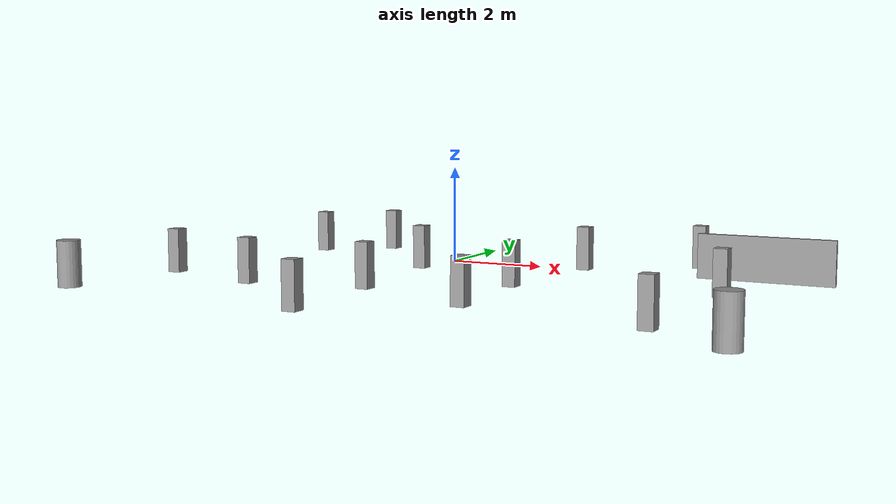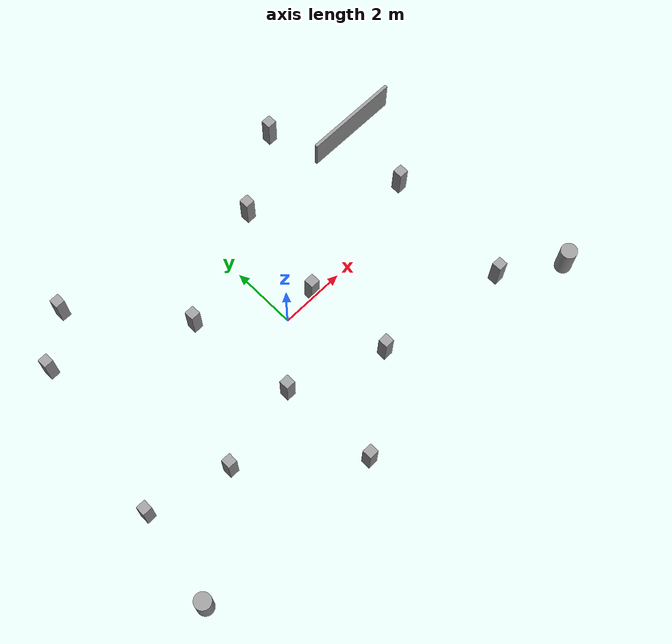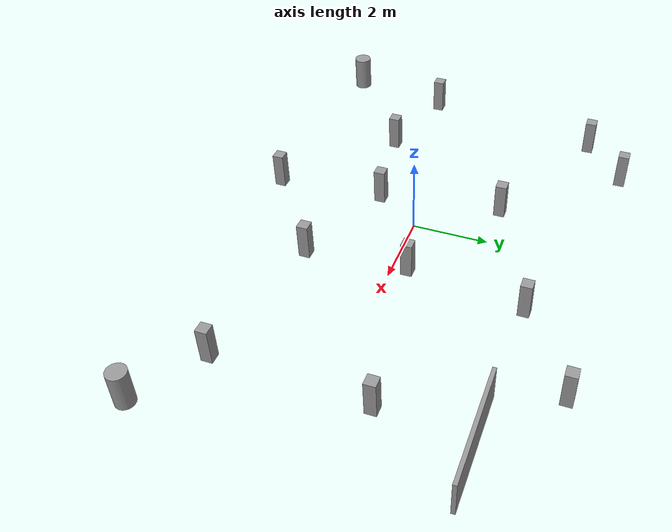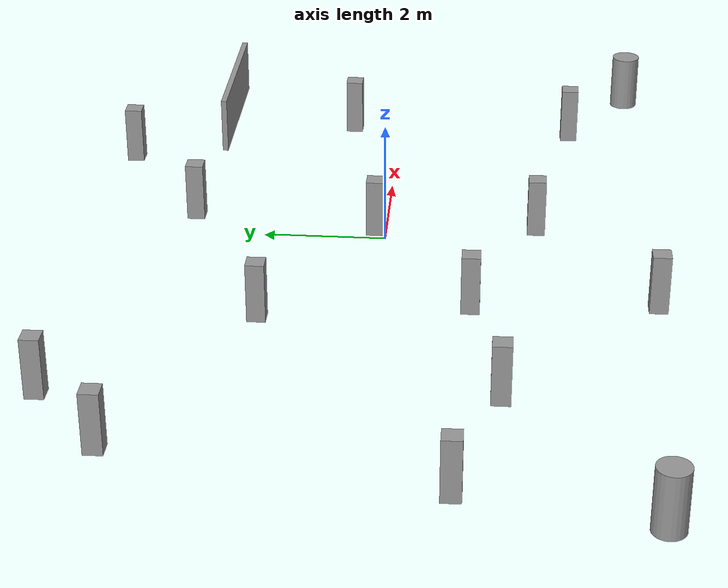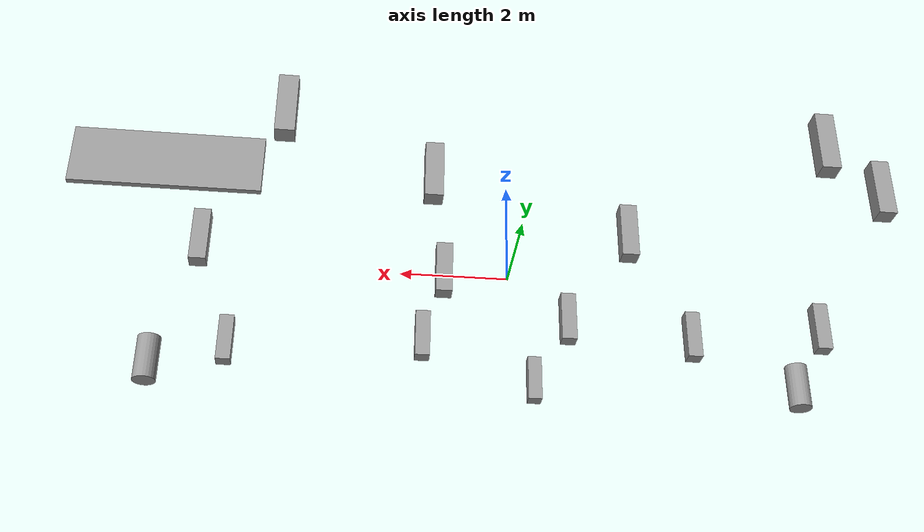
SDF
<?xml version='1.0'?>
<sdf version='1.7'>
  <model name='model_people'>
    <link name='link_1'>
      <inertial>
        <mass>1</mass>
        <inertia>
          <ixx>0.166667</ixx>
          <ixy>0</ixy>
          <ixz>0</ixz>
          <iyy>0.166667</iyy>
          <iyz>0</iyz>
          <izz>0.166667</izz>
        </inertia>
        <pose>0 0 0 0 -0 0</pose>
      </inertial>
      <pose>5.87565 3.29526 0 0 -0 0</pose>
      <gravity>1</gravity>
      <self_collide>0</self_collide>
      <kinematic>0</kinematic>
      <enable_wind>0</enable_wind>
      <visual name='visual'>
        <pose>0 0 0 0 -0 0</pose>
        <geometry>
          <box>
            <size>3 0.1 1</size>
          </box>
        </geometry>
        <material>
          <lighting>1</lighting>
          <script>
            <uri>file://media/materials/scripts/gazebo.material</uri>
            <name>Gazebo/Grey</name>
          </script>
          <shader type='pixel'>
            <normal_map>__default__</normal_map>
          </shader>
          <ambient>0.3 0.3 0.3 1</ambient>
          <diffuse>0.7 0.7 0.7 1</diffuse>
          <specular>0.01 0.01 0.01 1</specular>
          <emissive>0 0 0 1</emissive>
        </material>
        <transparency>0</transparency>
        <cast_shadows>1</cast_shadows>
      </visual>
      <collision name='collision'>
        <laser_retro>0</laser_retro>
        <max_contacts>10</max_contacts>
        <pose>0 0 0 0 -0 0</pose>
        <geometry>
          <box>
            <size>3 0.1 1</size>
          </box>
        </geometry>
        <surface>
          <friction>
            <ode>
              <mu>1</mu>
              <mu2>1</mu2>
              <fdir1>0 0 0</fdir1>
              <slip1>0</slip1>
              <slip2>0</slip2>
            </ode>
            <torsional>
              <coefficient>1</coefficient>
              <patch_radius>0</patch_radius>
              <surface_radius>0</surface_radius>
              <use_patch_radius>1</use_patch_radius>
              <ode>
                <slip>0</slip>
              </ode>
            </torsional>
          </friction>
          <bounce>
            <restitution_coefficient>0</restitution_coefficient>
            <threshold>1e+06</threshold>
          </bounce>
          <contact>
            <collide_without_contact>0</collide_without_contact>
            <collide_without_contact_bitmask>1</collide_without_contact_bitmask>
            <collide_bitmask>1</collide_bitmask>
            <ode>
              <soft_cfm>0</soft_cfm>
              <soft_erp>0.2</soft_erp>
              <kp>1e+13</kp>
              <kd>1</kd>
              <max_vel>0.01</max_vel>
              <min_depth>0</min_depth>
            </ode>
            <bullet>
              <split_impulse>1</split_impulse>
              <split_impulse_penetration_threshold>-0.01</split_impulse_penetration_threshold>
              <soft_cfm>0</soft_cfm>
              <soft_erp>0.2</soft_erp>
              <kp>1e+13</kp>
              <kd>1</kd>
            </bullet>
          </contact>
        </surface>
      </collision>
    </link>
    <link name='link_3'>
      <inertial>
        <mass>1</mass>
        <inertia>
          <ixx>0.166667</ixx>
          <ixy>0</ixy>
          <ixz>0</ixz>
          <iyy>0.166667</iyy>
          <iyz>0</iyz>
          <izz>0.166667</izz>
        </inertia>
        <pose>0 0 0 0 -0 0</pose>
      </inertial>
      <pose>1.41254 -2.50014 0 0 -0 0</pose>
      <gravity>1</gravity>
      <self_collide>0</self_collide>
      <kinematic>0</kinematic>
      <enable_wind>0</enable_wind>
      <visual name='visual'>
        <pose>0 0 0 0 -0 0</pose>
        <geometry>
          <box>
            <size>0.3 0.3 1</size>
          </box>
        </geometry>
        <material>
          <lighting>1</lighting>
          <script>
            <uri>file://media/materials/scripts/gazebo.material</uri>
            <name>Gazebo/Grey</name>
          </script>
          <shader type='pixel'>
            <normal_map>__default__</normal_map>
          </shader>
          <ambient>0.3 0.3 0.3 1</ambient>
          <diffuse>0.7 0.7 0.7 1</diffuse>
          <specular>0.01 0.01 0.01 1</specular>
          <emissive>0 0 0 1</emissive>
        </material>
        <transparency>0</transparency>
        <cast_shadows>1</cast_shadows>
      </visual>
      <collision name='collision'>
        <laser_retro>0</laser_retro>
        <max_contacts>10</max_contacts>
        <pose>0 0 0 0 -0 0</pose>
        <geometry>
          <box>
            <size>0.3 0.3 1</size>
          </box>
        </geometry>
        <surface>
          <friction>
            <ode>
              <mu>1</mu>
              <mu2>1</mu2>
              <fdir1>0 0 0</fdir1>
              <slip1>0</slip1>
              <slip2>0</slip2>
            </ode>
            <torsional>
              <coefficient>1</coefficient>
              <patch_radius>0</patch_radius>
              <surface_radius>0</surface_radius>
              <use_patch_radius>1</use_patch_radius>
              <ode>
                <slip>0</slip>
              </ode>
            </torsional>
          </friction>
          <bounce>
            <restitution_coefficient>0</restitution_coefficient>
            <threshold>1e+06</threshold>
          </bounce>
          <contact>
            <collide_without_contact>0</collide_without_contact>
            <collide_without_contact_bitmask>1</collide_without_contact_bitmask>
            <collide_bitmask>1</collide_bitmask>
            <ode>
              <soft_cfm>0</soft_cfm>
              <soft_erp>0.2</soft_erp>
              <kp>1e+13</kp>
              <kd>1</kd>
              <max_vel>0.01</max_vel>
              <min_depth>0</min_depth>
            </ode>
            <bullet>
              <split_impulse>1</split_impulse>
              <split_impulse_penetration_threshold>-0.01</split_impulse_penetration_threshold>
              <soft_cfm>0</soft_cfm>
              <soft_erp>0.2</soft_erp>
              <kp>1e+13</kp>
              <kd>1</kd>
            </bullet>
          </contact>
        </surface>
      </collision>
    </link>
    <link name='link_3_clone'>
      <inertial>
        <mass>1</mass>
        <inertia>
          <ixx>0.166667</ixx>
          <ixy>0</ixy>
          <ixz>0</ixz>
          <iyy>0.166667</iyy>
          <iyz>0</iyz>
          <izz>0.166667</izz>
        </inertia>
        <pose>0 0 0 0 -0 0</pose>
      </inertial>
      <pose>5.41108 -3.14206 0 0 -0 0</pose>
      <gravity>1</gravity>
      <self_collide>0</self_collide>
      <kinematic>0</kinematic>
      <enable_wind>0</enable_wind>
      <visual name='visual'>
        <pose>0 0 0 0 -0 0</pose>
        <geometry>
          <box>
            <size>0.3 0.3 1</size>
          </box>
        </geometry>
        <material>
          <lighting>1</lighting>
          <script>
            <uri>file://media/materials/scripts/gazebo.material</uri>
            <name>Gazebo/Grey</name>
          </script>
          <shader type='pixel'>
            <normal_map>__default__</normal_map>
          </shader>
          <ambient>0.3 0.3 0.3 1</ambient>
          <diffuse>0.7 0.7 0.7 1</diffuse>
          <specular>0.01 0.01 0.01 1</specular>
          <emissive>0 0 0 1</emissive>
        </material>
        <transparency>0</transparency>
        <cast_shadows>1</cast_shadows>
      </visual>
      <collision name='collision'>
        <laser_retro>0</laser_retro>
        <max_contacts>10</max_contacts>
        <pose>0 0 0 0 -0 0</pose>
        <geometry>
          <box>
            <size>0.3 0.3 1</size>
          </box>
        </geometry>
        <surface>
          <friction>
            <ode>
              <mu>1</mu>
              <mu2>1</mu2>
              <fdir1>0 0 0</fdir1>
              <slip1>0</slip1>
              <slip2>0</slip2>
            </ode>
            <torsional>
              <coefficient>1</coefficient>
              <patch_radius>0</patch_radius>
              <surface_radius>0</surface_radius>
              <use_patch_radius>1</use_patch_radius>
              <ode>
                <slip>0</slip>
              </ode>
            </torsional>
          </friction>
          <bounce>
            <restitution_coefficient>0</restitution_coefficient>
            <threshold>1e+06</threshold>
          </bounce>
          <contact>
            <collide_without_contact>0</collide_without_contact>
            <collide_without_contact_bitmask>1</collide_without_contact_bitmask>
            <collide_bitmask>1</collide_bitmask>
            <ode>
              <soft_cfm>0</soft_cfm>
              <soft_erp>0.2</soft_erp>
              <kp>1e+13</kp>
              <kd>1</kd>
              <max_vel>0.01</max_vel>
              <min_depth>0</min_depth>
            </ode>
            <bullet>
              <split_impulse>1</split_impulse>
              <split_impulse_penetration_threshold>-0.01</split_impulse_penetration_threshold>
              <soft_cfm>0</soft_cfm>
              <soft_erp>0.2</soft_erp>
              <kp>1e+13</kp>
              <kd>1</kd>
            </bullet>
          </contact>
        </surface>
      </collision>
    </link>
    <link name='link_3_clone_0'>
      <inertial>
        <mass>1</mass>
        <inertia>
          <ixx>0.166667</ixx>
          <ixy>0</ixy>
          <ixz>0</ixz>
          <iyy>0.166667</iyy>
          <iyz>0</iyz>
          <izz>0.166667</izz>
        </inertia>
        <pose>0 0 0 0 -0 0</pose>
      </inertial>
      <pose>1.64513 3.40116 0 0 -0 0</pose>
      <gravity>1</gravity>
      <self_collide>0</self_collide>
      <kinematic>0</kinematic>
      <enable_wind>0</enable_wind>
      <visual name='visual'>
        <pose>0 0 0 0 -0 0</pose>
        <geometry>
          <box>
            <size>0.3 0.3 1</size>
          </box>
        </geometry>
        <material>
          <lighting>1</lighting>
          <script>
            <uri>file://media/materials/scripts/gazebo.material</uri>
            <name>Gazebo/Grey</name>
          </script>
          <shader type='pixel'>
            <normal_map>__default__</normal_map>
          </shader>
          <ambient>0.3 0.3 0.3 1</ambient>
          <diffuse>0.7 0.7 0.7 1</diffuse>
          <specular>0.01 0.01 0.01 1</specular>
          <emissive>0 0 0 1</emissive>
        </material>
        <transparency>0</transparency>
        <cast_shadows>1</cast_shadows>
      </visual>
      <collision name='collision'>
        <laser_retro>0</laser_retro>
        <max_contacts>10</max_contacts>
        <pose>0 0 0 0 -0 0</pose>
        <geometry>
          <box>
            <size>0.3 0.3 1</size>
          </box>
        </geometry>
        <surface>
          <friction>
            <ode>
              <mu>1</mu>
              <mu2>1</mu2>
              <fdir1>0 0 0</fdir1>
              <slip1>0</slip1>
              <slip2>0</slip2>
            </ode>
            <torsional>
              <coefficient>1</coefficient>
              <patch_radius>0</patch_radius>
              <surface_radius>0</surface_radius>
              <use_patch_radius>1</use_patch_radius>
              <ode>
                <slip>0</slip>
              </ode>
            </torsional>
          </friction>
          <bounce>
            <restitution_coefficient>0</restitution_coefficient>
            <threshold>1e+06</threshold>
          </bounce>
          <contact>
            <collide_without_contact>0</collide_without_contact>
            <collide_without_contact_bitmask>1</collide_without_contact_bitmask>
            <collide_bitmask>1</collide_bitmask>
            <ode>
              <soft_cfm>0</soft_cfm>
              <soft_erp>0.2</soft_erp>
              <kp>1e+13</kp>
              <kd>1</kd>
              <max_vel>0.01</max_vel>
              <min_depth>0</min_depth>
            </ode>
            <bullet>
              <split_impulse>1</split_impulse>
              <split_impulse_penetration_threshold>-0.01</split_impulse_penetration_threshold>
              <soft_cfm>0</soft_cfm>
              <soft_erp>0.2</soft_erp>
              <kp>1e+13</kp>
              <kd>1</kd>
            </bullet>
          </contact>
        </surface>
      </collision>
    </link>
    <link name='link_3_clone_1'>
      <inertial>
        <mass>1</mass>
        <inertia>
          <ixx>0.166667</ixx>
          <ixy>0</ixy>
          <ixz>0</ixz>
          <iyy>0.166667</iyy>
          <iyz>0</iyz>
          <izz>0.166667</izz>
        </inertia>
        <pose>0 0 0 0 -0 0</pose>
      </inertial>
      <pose>-1.40268 -1.44307 0 0 -0 0</pose>
      <gravity>1</gravity>
      <self_collide>0</self_collide>
      <kinematic>0</kinematic>
      <enable_wind>0</enable_wind>
      <visual name='visual'>
        <pose>0 0 0 0 -0 0</pose>
        <geometry>
          <box>
            <size>0.3 0.3 1</size>
          </box>
        </geometry>
        <material>
          <lighting>1</lighting>
          <script>
            <uri>file://media/materials/scripts/gazebo.material</uri>
            <name>Gazebo/Grey</name>
          </script>
          <shader type='pixel'>
            <normal_map>__default__</normal_map>
          </shader>
          <ambient>0.3 0.3 0.3 1</ambient>
          <diffuse>0.7 0.7 0.7 1</diffuse>
          <specular>0.01 0.01 0.01 1</specular>
          <emissive>0 0 0 1</emissive>
        </material>
        <transparency>0</transparency>
        <cast_shadows>1</cast_shadows>
      </visual>
      <collision name='collision'>
        <laser_retro>0</laser_retro>
        <max_contacts>10</max_contacts>
        <pose>0 0 0 0 -0 0</pose>
        <geometry>
          <box>
            <size>0.3 0.3 1</size>
          </box>
        </geometry>
        <surface>
          <friction>
            <ode>
              <mu>1</mu>
              <mu2>1</mu2>
              <fdir1>0 0 0</fdir1>
              <slip1>0</slip1>
              <slip2>0</slip2>
            </ode>
            <torsional>
              <coefficient>1</coefficient>
              <patch_radius>0</patch_radius>
              <surface_radius>0</surface_radius>
              <use_patch_radius>1</use_patch_radius>
              <ode>
                <slip>0</slip>
              </ode>
            </torsional>
          </friction>
          <bounce>
            <restitution_coefficient>0</restitution_coefficient>
            <threshold>1e+06</threshold>
          </bounce>
          <contact>
            <collide_without_contact>0</collide_without_contact>
            <collide_without_contact_bitmask>1</collide_without_contact_bitmask>
            <collide_bitmask>1</collide_bitmask>
            <ode>
              <soft_cfm>0</soft_cfm>
              <soft_erp>0.2</soft_erp>
              <kp>1e+13</kp>
              <kd>1</kd>
              <max_vel>0.01</max_vel>
              <min_depth>0</min_depth>
            </ode>
            <bullet>
              <split_impulse>1</split_impulse>
              <split_impulse_penetration_threshold>-0.01</split_impulse_penetration_threshold>
              <soft_cfm>0</soft_cfm>
              <soft_erp>0.2</soft_erp>
              <kp>1e+13</kp>
              <kd>1</kd>
            </bullet>
          </contact>
        </surface>
      </collision>
    </link>
    <link name='link_3_clone_2'>
      <inertial>
        <mass>1</mass>
        <inertia>
          <ixx>0.166667</ixx>
          <ixy>0</ixy>
          <ixz>0</ixz>
          <iyy>0.166667</iyy>
          <iyz>0</iyz>
          <izz>0.166667</izz>
        </inertia>
        <pose>0 0 0 0 -0 0</pose>
      </inertial>
      <pose>-1.8757 1.90285 0 0 -0 0</pose>
      <gravity>1</gravity>
      <self_collide>0</self_collide>
      <kinematic>0</kinematic>
      <enable_wind>0</enable_wind>
      <visual name='visual'>
        <pose>0 0 0 0 -0 0</pose>
        <geometry>
          <box>
            <size>0.3 0.3 1</size>
          </box>
        </geometry>
        <material>
          <lighting>1</lighting>
          <script>
            <uri>file://media/materials/scripts/gazebo.material</uri>
            <name>Gazebo/Grey</name>
          </script>
          <shader type='pixel'>
            <normal_map>__default__</normal_map>
          </shader>
          <ambient>0.3 0.3 0.3 1</ambient>
          <diffuse>0.7 0.7 0.7 1</diffuse>
          <specular>0.01 0.01 0.01 1</specular>
          <emissive>0 0 0 1</emissive>
        </material>
        <transparency>0</transparency>
        <cast_shadows>1</cast_shadows>
      </visual>
      <collision name='collision'>
        <laser_retro>0</laser_retro>
        <max_contacts>10</max_contacts>
        <pose>0 0 0 0 -0 0</pose>
        <geometry>
          <box>
            <size>0.3 0.3 1</size>
          </box>
        </geometry>
        <surface>
          <friction>
            <ode>
              <mu>1</mu>
              <mu2>1</mu2>
              <fdir1>0 0 0</fdir1>
              <slip1>0</slip1>
              <slip2>0</slip2>
            </ode>
            <torsional>
              <coefficient>1</coefficient>
              <patch_radius>0</patch_radius>
              <surface_radius>0</surface_radius>
              <use_patch_radius>1</use_patch_radius>
              <ode>
                <slip>0</slip>
              </ode>
            </torsional>
          </friction>
          <bounce>
            <restitution_coefficient>0</restitution_coefficient>
            <threshold>1e+06</threshold>
          </bounce>
          <contact>
            <collide_without_contact>0</collide_without_contact>
            <collide_without_contact_bitmask>1</collide_without_contact_bitmask>
            <collide_bitmask>1</collide_bitmask>
            <ode>
              <soft_cfm>0</soft_cfm>
              <soft_erp>0.2</soft_erp>
              <kp>1e+13</kp>
              <kd>1</kd>
              <max_vel>0.01</max_vel>
              <min_depth>0</min_depth>
            </ode>
            <bullet>
              <split_impulse>1</split_impulse>
              <split_impulse_penetration_threshold>-0.01</split_impulse_penetration_threshold>
              <soft_cfm>0</soft_cfm>
              <soft_erp>0.2</soft_erp>
              <kp>1e+13</kp>
              <kd>1</kd>
            </bullet>
          </contact>
        </surface>
      </collision>
    </link>
    <link name='link_3_clone_2_clone'>
      <inertial>
        <mass>1</mass>
        <inertia>
          <ixx>0.166667</ixx>
          <ixy>0</ixy>
          <ixz>0</ixz>
          <iyy>0.166667</iyy>
          <iyz>0</iyz>
          <izz>0.166667</izz>
        </inertia>
        <pose>0 0 0 0 -0 0</pose>
      </inertial>
      <pose>-4.3502 4.85297 0 0 -0 0</pose>
      <gravity>1</gravity>
      <self_collide>0</self_collide>
      <kinematic>0</kinematic>
      <enable_wind>0</enable_wind>
      <visual name='visual'>
        <pose>0 0 0 0 -0 0</pose>
        <geometry>
          <box>
            <size>0.3 0.3 1</size>
          </box>
        </geometry>
        <material>
          <lighting>1</lighting>
          <script>
            <uri>file://media/materials/scripts/gazebo.material</uri>
            <name>Gazebo/Grey</name>
          </script>
          <shader type='pixel'>
            <normal_map>__default__</normal_map>
          </shader>
          <ambient>0.3 0.3 0.3 1</ambient>
          <diffuse>0.7 0.7 0.7 1</diffuse>
          <specular>0.01 0.01 0.01 1</specular>
          <emissive>0 0 0 1</emissive>
        </material>
        <transparency>0</transparency>
        <cast_shadows>1</cast_shadows>
      </visual>
      <collision name='collision'>
        <laser_retro>0</laser_retro>
        <max_contacts>10</max_contacts>
        <pose>0 0 0 0 -0 0</pose>
        <geometry>
          <box>
            <size>0.3 0.3 1</size>
          </box>
        </geometry>
        <surface>
          <friction>
            <ode>
              <mu>1</mu>
              <mu2>1</mu2>
              <fdir1>0 0 0</fdir1>
              <slip1>0</slip1>
              <slip2>0</slip2>
            </ode>
            <torsional>
              <coefficient>1</coefficient>
              <patch_radius>0</patch_radius>
              <surface_radius>0</surface_radius>
              <use_patch_radius>1</use_patch_radius>
              <ode>
                <slip>0</slip>
              </ode>
            </torsional>
          </friction>
          <bounce>
            <restitution_coefficient>0</restitution_coefficient>
            <threshold>1e+06</threshold>
          </bounce>
          <contact>
            <collide_without_contact>0</collide_without_contact>
            <collide_without_contact_bitmask>1</collide_without_contact_bitmask>
            <collide_bitmask>1</collide_bitmask>
            <ode>
              <soft_cfm>0</soft_cfm>
              <soft_erp>0.2</soft_erp>
              <kp>1e+13</kp>
              <kd>1</kd>
              <max_vel>0.01</max_vel>
              <min_depth>0</min_depth>
            </ode>
            <bullet>
              <split_impulse>1</split_impulse>
              <split_impulse_penetration_threshold>-0.01</split_impulse_penetration_threshold>
              <soft_cfm>0</soft_cfm>
              <soft_erp>0.2</soft_erp>
              <kp>1e+13</kp>
              <kd>1</kd>
            </bullet>
          </contact>
        </surface>
      </collision>
    </link>
    <link name='link_3_clone_2_clone_0'>
      <inertial>
        <mass>1</mass>
        <inertia>
          <ixx>0.166667</ixx>
          <ixy>0</ixy>
          <ixz>0</ixz>
          <iyy>0.166667</iyy>
          <iyz>0</iyz>
          <izz>0.166667</izz>
        </inertia>
        <pose>0 0 0 0 -0 0</pose>
      </inertial>
      <pose>-4.06604 -1.95479 0 0 -0 0</pose>
      <gravity>1</gravity>
      <self_collide>0</self_collide>
      <kinematic>0</kinematic>
      <enable_wind>0</enable_wind>
      <visual name='visual'>
        <pose>0 0 0 0 -0 0</pose>
        <geometry>
          <box>
            <size>0.3 0.3 1</size>
          </box>
        </geometry>
        <material>
          <lighting>1</lighting>
          <script>
            <uri>file://media/materials/scripts/gazebo.material</uri>
            <name>Gazebo/Grey</name>
          </script>
          <shader type='pixel'>
            <normal_map>__default__</normal_map>
          </shader>
          <ambient>0.3 0.3 0.3 1</ambient>
          <diffuse>0.7 0.7 0.7 1</diffuse>
          <specular>0.01 0.01 0.01 1</specular>
          <emissive>0 0 0 1</emissive>
        </material>
        <transparency>0</transparency>
        <cast_shadows>1</cast_shadows>
      </visual>
      <collision name='collision'>
        <laser_retro>0</laser_retro>
        <max_contacts>10</max_contacts>
        <pose>0 0 0 0 -0 0</pose>
        <geometry>
          <box>
            <size>0.3 0.3 1</size>
          </box>
        </geometry>
        <surface>
          <friction>
            <ode>
              <mu>1</mu>
              <mu2>1</mu2>
              <fdir1>0 0 0</fdir1>
              <slip1>0</slip1>
              <slip2>0</slip2>
            </ode>
            <torsional>
              <coefficient>1</coefficient>
              <patch_radius>0</patch_radius>
              <surface_radius>0</surface_radius>
              <use_patch_radius>1</use_patch_radius>
              <ode>
                <slip>0</slip>
              </ode>
            </torsional>
          </friction>
          <bounce>
            <restitution_coefficient>0</restitution_coefficient>
            <threshold>1e+06</threshold>
          </bounce>
          <contact>
            <collide_without_contact>0</collide_without_contact>
            <collide_without_contact_bitmask>1</collide_without_contact_bitmask>
            <collide_bitmask>1</collide_bitmask>
            <ode>
              <soft_cfm>0</soft_cfm>
              <soft_erp>0.2</soft_erp>
              <kp>1e+13</kp>
              <kd>1</kd>
              <max_vel>0.01</max_vel>
              <min_depth>0</min_depth>
            </ode>
            <bullet>
              <split_impulse>1</split_impulse>
              <split_impulse_penetration_threshold>-0.01</split_impulse_penetration_threshold>
              <soft_cfm>0</soft_cfm>
              <soft_erp>0.2</soft_erp>
              <kp>1e+13</kp>
              <kd>1</kd>
            </bullet>
          </contact>
        </surface>
      </collision>
    </link>
    <link name='link_3_clone_2_clone_1'>
      <inertial>
        <mass>1</mass>
        <inertia>
          <ixx>0.166667</ixx>
          <ixy>0</ixy>
          <ixz>0</ixz>
          <iyy>0.166667</iyy>
          <iyz>0</iyz>
          <izz>0.166667</izz>
        </inertia>
        <pose>0 0 0 0 -0 0</pose>
      </inertial>
      <pose>-5.73259 3.6978 0 0 -0 0</pose>
      <gravity>1</gravity>
      <self_collide>0</self_collide>
      <kinematic>0</kinematic>
      <enable_wind>0</enable_wind>
      <visual name='visual'>
        <pose>0 0 0 0 -0 0</pose>
        <geometry>
          <box>
            <size>0.3 0.3 1</size>
          </box>
        </geometry>
        <material>
          <lighting>1</lighting>
          <script>
            <uri>file://media/materials/scripts/gazebo.material</uri>
            <name>Gazebo/Grey</name>
          </script>
          <shader type='pixel'>
            <normal_map>__default__</normal_map>
          </shader>
          <ambient>0.3 0.3 0.3 1</ambient>
          <diffuse>0.7 0.7 0.7 1</diffuse>
          <specular>0.01 0.01 0.01 1</specular>
          <emissive>0 0 0 1</emissive>
        </material>
        <transparency>0</transparency>
        <cast_shadows>1</cast_shadows>
      </visual>
      <collision name='collision'>
        <laser_retro>0</laser_retro>
        <max_contacts>10</max_contacts>
        <pose>0 0 0 0 -0 0</pose>
        <geometry>
          <box>
            <size>0.3 0.3 1</size>
          </box>
        </geometry>
        <surface>
          <friction>
            <ode>
              <mu>1</mu>
              <mu2>1</mu2>
              <fdir1>0 0 0</fdir1>
              <slip1>0</slip1>
              <slip2>0</slip2>
            </ode>
            <torsional>
              <coefficient>1</coefficient>
              <patch_radius>0</patch_radius>
              <surface_radius>0</surface_radius>
              <use_patch_radius>1</use_patch_radius>
              <ode>
                <slip>0</slip>
              </ode>
            </torsional>
          </friction>
          <bounce>
            <restitution_coefficient>0</restitution_coefficient>
            <threshold>1e+06</threshold>
          </bounce>
          <contact>
            <collide_without_contact>0</collide_without_contact>
            <collide_without_contact_bitmask>1</collide_without_contact_bitmask>
            <collide_bitmask>1</collide_bitmask>
            <ode>
              <soft_cfm>0</soft_cfm>
              <soft_erp>0.2</soft_erp>
              <kp>1e+13</kp>
              <kd>1</kd>
              <max_vel>0.01</max_vel>
              <min_depth>0</min_depth>
            </ode>
            <bullet>
              <split_impulse>1</split_impulse>
              <split_impulse_penetration_threshold>-0.01</split_impulse_penetration_threshold>
              <soft_cfm>0</soft_cfm>
              <soft_erp>0.2</soft_erp>
              <kp>1e+13</kp>
              <kd>1</kd>
            </bullet>
          </contact>
        </surface>
      </collision>
    </link>
    <link name='link_3_clone_2_clone_2'>
      <inertial>
        <mass>1</mass>
        <inertia>
          <ixx>0.166667</ixx>
          <ixy>0</ixy>
          <ixz>0</ixz>
          <iyy>0.166667</iyy>
          <iyz>0</iyz>
          <izz>0.166667</izz>
        </inertia>
        <pose>0 0 0 0 -0 0</pose>
      </inertial>
      <pose>-6.53007 -1.31119 0 0 -0 0</pose>
      <gravity>1</gravity>
      <self_collide>0</self_collide>
      <kinematic>0</kinematic>
      <enable_wind>0</enable_wind>
      <visual name='visual'>
        <pose>0 0 0 0 -0 0</pose>
        <geometry>
          <box>
            <size>0.3 0.3 1</size>
          </box>
        </geometry>
        <material>
          <lighting>1</lighting>
          <script>
            <uri>file://media/materials/scripts/gazebo.material</uri>
            <name>Gazebo/Grey</name>
          </script>
          <shader type='pixel'>
            <normal_map>__default__</normal_map>
          </shader>
          <ambient>0.3 0.3 0.3 1</ambient>
          <diffuse>0.7 0.7 0.7 1</diffuse>
          <specular>0.01 0.01 0.01 1</specular>
          <emissive>0 0 0 1</emissive>
        </material>
        <transparency>0</transparency>
        <cast_shadows>1</cast_shadows>
      </visual>
      <collision name='collision'>
        <laser_retro>0</laser_retro>
        <max_contacts>10</max_contacts>
        <pose>0 0 0 0 -0 0</pose>
        <geometry>
          <box>
            <size>0.3 0.3 1</size>
          </box>
        </geometry>
        <surface>
          <friction>
            <ode>
              <mu>1</mu>
              <mu2>1</mu2>
              <fdir1>0 0 0</fdir1>
              <slip1>0</slip1>
              <slip2>0</slip2>
            </ode>
            <torsional>
              <coefficient>1</coefficient>
              <patch_radius>0</patch_radius>
              <surface_radius>0</surface_radius>
              <use_patch_radius>1</use_patch_radius>
              <ode>
                <slip>0</slip>
              </ode>
            </torsional>
          </friction>
          <bounce>
            <restitution_coefficient>0</restitution_coefficient>
            <threshold>1e+06</threshold>
          </bounce>
          <contact>
            <collide_without_contact>0</collide_without_contact>
            <collide_without_contact_bitmask>1</collide_without_contact_bitmask>
            <collide_bitmask>1</collide_bitmask>
            <ode>
              <soft_cfm>0</soft_cfm>
              <soft_erp>0.2</soft_erp>
              <kp>1e+13</kp>
              <kd>1</kd>
              <max_vel>0.01</max_vel>
              <min_depth>0</min_depth>
            </ode>
            <bullet>
              <split_impulse>1</split_impulse>
              <split_impulse_penetration_threshold>-0.01</split_impulse_penetration_threshold>
              <soft_cfm>0</soft_cfm>
              <soft_erp>0.2</soft_erp>
              <kp>1e+13</kp>
              <kd>1</kd>
            </bullet>
          </contact>
        </surface>
      </collision>
    </link>
    <link name='link_3_clone_2_clone_3'>
      <inertial>
        <mass>1</mass>
        <inertia>
          <ixx>0.166667</ixx>
          <ixy>0</ixy>
          <ixz>0</ixz>
          <iyy>0.166667</iyy>
          <iyz>0</iyz>
          <izz>0.166667</izz>
        </inertia>
        <pose>0 0 0 0 -0 0</pose>
      </inertial>
      <pose>-1.18011 -4.42479 0 0 -0 0</pose>
      <gravity>1</gravity>
      <self_collide>0</self_collide>
      <kinematic>0</kinematic>
      <enable_wind>0</enable_wind>
      <visual name='visual'>
        <pose>0 0 0 0 -0 0</pose>
        <geometry>
          <box>
            <size>0.3 0.3 1</size>
          </box>
        </geometry>
        <material>
          <lighting>1</lighting>
          <script>
            <uri>file://media/materials/scripts/gazebo.material</uri>
            <name>Gazebo/Grey</name>
          </script>
          <shader type='pixel'>
            <normal_map>__default__</normal_map>
          </shader>
          <ambient>0.3 0.3 0.3 1</ambient>
          <diffuse>0.7 0.7 0.7 1</diffuse>
          <specular>0.01 0.01 0.01 1</specular>
          <emissive>0 0 0 1</emissive>
        </material>
        <transparency>0</transparency>
        <cast_shadows>1</cast_shadows>
      </visual>
      <collision name='collision'>
        <laser_retro>0</laser_retro>
        <max_contacts>10</max_contacts>
        <pose>0 0 0 0 -0 0</pose>
        <geometry>
          <box>
            <size>0.3 0.3 1</size>
          </box>
        </geometry>
        <surface>
          <friction>
            <ode>
              <mu>1</mu>
              <mu2>1</mu2>
              <fdir1>0 0 0</fdir1>
              <slip1>0</slip1>
              <slip2>0</slip2>
            </ode>
            <torsional>
              <coefficient>1</coefficient>
              <patch_radius>0</patch_radius>
              <surface_radius>0</surface_radius>
              <use_patch_radius>1</use_patch_radius>
              <ode>
                <slip>0</slip>
              </ode>
            </torsional>
          </friction>
          <bounce>
            <restitution_coefficient>0</restitution_coefficient>
            <threshold>1e+06</threshold>
          </bounce>
          <contact>
            <collide_without_contact>0</collide_without_contact>
            <collide_without_contact_bitmask>1</collide_without_contact_bitmask>
            <collide_bitmask>1</collide_bitmask>
            <ode>
              <soft_cfm>0</soft_cfm>
              <soft_erp>0.2</soft_erp>
              <kp>1e+13</kp>
              <kd>1</kd>
              <max_vel>0.01</max_vel>
              <min_depth>0</min_depth>
            </ode>
            <bullet>
              <split_impulse>1</split_impulse>
              <split_impulse_penetration_threshold>-0.01</split_impulse_penetration_threshold>
              <soft_cfm>0</soft_cfm>
              <soft_erp>0.2</soft_erp>
              <kp>1e+13</kp>
              <kd>1</kd>
            </bullet>
          </contact>
        </surface>
      </collision>
    </link>
    <link name='link_3_clone_3'>
      <inertial>
        <mass>1</mass>
        <inertia>
          <ixx>0.166667</ixx>
          <ixy>0</ixy>
          <ixz>0</ixz>
          <iyy>0.166667</iyy>
          <iyz>0</iyz>
          <izz>0.166667</izz>
        </inertia>
        <pose>0 0 0 0 -0 0</pose>
      </inertial>
      <pose>1.21145 0.247128 0 0 -0 0</pose>
      <gravity>1</gravity>
      <self_collide>0</self_collide>
      <kinematic>0</kinematic>
      <enable_wind>0</enable_wind>
      <visual name='visual'>
        <pose>0 0 0 0 -0 0</pose>
        <geometry>
          <box>
            <size>0.3 0.3 1</size>
          </box>
        </geometry>
        <material>
          <lighting>1</lighting>
          <script>
            <uri>file://media/materials/scripts/gazebo.material</uri>
            <name>Gazebo/Grey</name>
          </script>
          <shader type='pixel'>
            <normal_map>__default__</normal_map>
          </shader>
          <ambient>0.3 0.3 0.3 1</ambient>
          <diffuse>0.7 0.7 0.7 1</diffuse>
          <specular>0.01 0.01 0.01 1</specular>
          <emissive>0 0 0 1</emissive>
        </material>
        <transparency>0</transparency>
        <cast_shadows>1</cast_shadows>
      </visual>
      <collision name='collision'>
        <laser_retro>0</laser_retro>
        <max_contacts>10</max_contacts>
        <pose>0 0 0 0 -0 0</pose>
        <geometry>
          <box>
            <size>0.3 0.3 1</size>
          </box>
        </geometry>
        <surface>
          <friction>
            <ode>
              <mu>1</mu>
              <mu2>1</mu2>
              <fdir1>0 0 0</fdir1>
              <slip1>0</slip1>
              <slip2>0</slip2>
            </ode>
            <torsional>
              <coefficient>1</coefficient>
              <patch_radius>0</patch_radius>
              <surface_radius>0</surface_radius>
              <use_patch_radius>1</use_patch_radius>
              <ode>
                <slip>0</slip>
              </ode>
            </torsional>
          </friction>
          <bounce>
            <restitution_coefficient>0</restitution_coefficient>
            <threshold>1e+06</threshold>
          </bounce>
          <contact>
            <collide_without_contact>0</collide_without_contact>
            <collide_without_contact_bitmask>1</collide_without_contact_bitmask>
            <collide_bitmask>1</collide_bitmask>
            <ode>
              <soft_cfm>0</soft_cfm>
              <soft_erp>0.2</soft_erp>
              <kp>1e+13</kp>
              <kd>1</kd>
              <max_vel>0.01</max_vel>
              <min_depth>0</min_depth>
            </ode>
            <bullet>
              <split_impulse>1</split_impulse>
              <split_impulse_penetration_threshold>-0.01</split_impulse_penetration_threshold>
              <soft_cfm>0</soft_cfm>
              <soft_erp>0.2</soft_erp>
              <kp>1e+13</kp>
              <kd>1</kd>
            </bullet>
          </contact>
        </surface>
      </collision>
    </link>
    <link name='link_3_clone_4'>
      <inertial>
        <mass>1</mass>
        <inertia>
          <ixx>0.166667</ixx>
          <ixy>0</ixy>
          <ixz>0</ixz>
          <iyy>0.166667</iyy>
          <iyz>0</iyz>
          <izz>0.166667</izz>
        </inertia>
        <pose>0 0 0 0 -0 0</pose>
      </inertial>
      <pose>5.56661 0.940043 0 0 -0 0</pose>
      <gravity>1</gravity>
      <self_collide>0</self_collide>
      <kinematic>0</kinematic>
      <enable_wind>0</enable_wind>
      <visual name='visual'>
        <pose>0 0 0 0 -0 0</pose>
        <geometry>
          <box>
            <size>0.3 0.3 1</size>
          </box>
        </geometry>
        <material>
          <lighting>1</lighting>
          <script>
            <uri>file://media/materials/scripts/gazebo.material</uri>
            <name>Gazebo/Grey</name>
          </script>
          <shader type='pixel'>
            <normal_map>__default__</normal_map>
          </shader>
          <ambient>0.3 0.3 0.3 1</ambient>
          <diffuse>0.7 0.7 0.7 1</diffuse>
          <specular>0.01 0.01 0.01 1</specular>
          <emissive>0 0 0 1</emissive>
        </material>
        <transparency>0</transparency>
        <cast_shadows>1</cast_shadows>
      </visual>
      <collision name='collision'>
        <laser_retro>0</laser_retro>
        <max_contacts>10</max_contacts>
        <pose>0 0 0 0 -0 0</pose>
        <geometry>
          <box>
            <size>0.3 0.3 1</size>
          </box>
        </geometry>
        <surface>
          <friction>
            <ode>
              <mu>1</mu>
              <mu2>1</mu2>
              <fdir1>0 0 0</fdir1>
              <slip1>0</slip1>
              <slip2>0</slip2>
            </ode>
            <torsional>
              <coefficient>1</coefficient>
              <patch_radius>0</patch_radius>
              <surface_radius>0</surface_radius>
              <use_patch_radius>1</use_patch_radius>
              <ode>
                <slip>0</slip>
              </ode>
            </torsional>
          </friction>
          <bounce>
            <restitution_coefficient>0</restitution_coefficient>
            <threshold>1e+06</threshold>
          </bounce>
          <contact>
            <collide_without_contact>0</collide_without_contact>
            <collide_without_contact_bitmask>1</collide_without_contact_bitmask>
            <collide_bitmask>1</collide_bitmask>
            <ode>
              <soft_cfm>0</soft_cfm>
              <soft_erp>0.2</soft_erp>
              <kp>1e+13</kp>
              <kd>1</kd>
              <max_vel>0.01</max_vel>
              <min_depth>0</min_depth>
            </ode>
            <bullet>
              <split_impulse>1</split_impulse>
              <split_impulse_penetration_threshold>-0.01</split_impulse_penetration_threshold>
              <soft_cfm>0</soft_cfm>
              <soft_erp>0.2</soft_erp>
              <kp>1e+13</kp>
              <kd>1</kd>
            </bullet>
          </contact>
        </surface>
      </collision>
    </link>
    <link name='link_3_clone_5'>
      <inertial>
        <mass>1</mass>
        <inertia>
          <ixx>0.166667</ixx>
          <ixy>0</ixy>
          <ixz>0</ixz>
          <iyy>0.166667</iyy>
          <iyz>0</iyz>
          <izz>0.166667</izz>
        </inertia>
        <pose>0 0 0 0 -0 0</pose>
      </inertial>
      <pose>3.96151 4.89158 0 0 -0 0</pose>
      <gravity>1</gravity>
      <self_collide>0</self_collide>
      <kinematic>0</kinematic>
      <enable_wind>0</enable_wind>
      <visual name='visual'>
        <pose>0 0 0 0 -0 0</pose>
        <geometry>
          <box>
            <size>0.3 0.3 1</size>
          </box>
        </geometry>
        <material>
          <lighting>1</lighting>
          <script>
            <uri>file://media/materials/scripts/gazebo.material</uri>
            <name>Gazebo/Grey</name>
          </script>
          <shader type='pixel'>
            <normal_map>__default__</normal_map>
          </shader>
          <ambient>0.3 0.3 0.3 1</ambient>
          <diffuse>0.7 0.7 0.7 1</diffuse>
          <specular>0.01 0.01 0.01 1</specular>
          <emissive>0 0 0 1</emissive>
        </material>
        <transparency>0</transparency>
        <cast_shadows>1</cast_shadows>
      </visual>
      <collision name='collision'>
        <laser_retro>0</laser_retro>
        <max_contacts>10</max_contacts>
        <pose>0 0 0 0 -0 0</pose>
        <geometry>
          <box>
            <size>0.3 0.3 1</size>
          </box>
        </geometry>
        <surface>
          <friction>
            <ode>
              <mu>1</mu>
              <mu2>1</mu2>
              <fdir1>0 0 0</fdir1>
              <slip1>0</slip1>
              <slip2>0</slip2>
            </ode>
            <torsional>
              <coefficient>1</coefficient>
              <patch_radius>0</patch_radius>
              <surface_radius>0</surface_radius>
              <use_patch_radius>1</use_patch_radius>
              <ode>
                <slip>0</slip>
              </ode>
            </torsional>
          </friction>
          <bounce>
            <restitution_coefficient>0</restitution_coefficient>
            <threshold>1e+06</threshold>
          </bounce>
          <contact>
            <collide_without_contact>0</collide_without_contact>
            <collide_without_contact_bitmask>1</collide_without_contact_bitmask>
            <collide_bitmask>1</collide_bitmask>
            <ode>
              <soft_cfm>0</soft_cfm>
              <soft_erp>0.2</soft_erp>
              <kp>1e+13</kp>
              <kd>1</kd>
              <max_vel>0.01</max_vel>
              <min_depth>0</min_depth>
            </ode>
            <bullet>
              <split_impulse>1</split_impulse>
              <split_impulse_penetration_threshold>-0.01</split_impulse_penetration_threshold>
              <soft_cfm>0</soft_cfm>
              <soft_erp>0.2</soft_erp>
              <kp>1e+13</kp>
              <kd>1</kd>
            </bullet>
          </contact>
        </surface>
      </collision>
    </link>
    <link name='link_4'>
      <inertial>
        <mass>1</mass>
        <inertia>
          <ixx>0.145833</ixx>
          <ixy>0</ixy>
          <ixz>0</ixz>
          <iyy>0.145833</iyy>
          <iyz>0</iyz>
          <izz>0.125</izz>
        </inertia>
        <pose>0 0 0 0 -0 0</pose>
      </inertial>
      <pose>-7.07269 -4.18386 0 0 -0 0</pose>
      <gravity>1</gravity>
      <self_collide>0</self_collide>
      <kinematic>0</kinematic>
      <enable_wind>0</enable_wind>
      <visual name='visual'>
        <pose>0 0 0 0 -0 0</pose>
        <geometry>
          <cylinder>
            <radius>0.25</radius>
            <length>1</length>
          </cylinder>
        </geometry>
        <material>
          <lighting>1</lighting>
          <script>
            <uri>file://media/materials/scripts/gazebo.material</uri>
            <name>Gazebo/Grey</name>
          </script>
          <shader type='pixel'>
            <normal_map>__default__</normal_map>
          </shader>
          <ambient>0.3 0.3 0.3 1</ambient>
          <diffuse>0.7 0.7 0.7 1</diffuse>
          <specular>0.01 0.01 0.01 1</specular>
          <emissive>0 0 0 1</emissive>
        </material>
        <transparency>0</transparency>
        <cast_shadows>1</cast_shadows>
      </visual>
      <collision name='collision'>
        <laser_retro>0</laser_retro>
        <max_contacts>10</max_contacts>
        <pose>0 0 0 0 -0 0</pose>
        <geometry>
          <cylinder>
            <radius>0.25</radius>
            <length>1</length>
          </cylinder>
        </geometry>
        <surface>
          <friction>
            <ode>
              <mu>1</mu>
              <mu2>1</mu2>
              <fdir1>0 0 0</fdir1>
              <slip1>0</slip1>
              <slip2>0</slip2>
            </ode>
            <torsional>
              <coefficient>1</coefficient>
              <patch_radius>0</patch_radius>
              <surface_radius>0</surface_radius>
              <use_patch_radius>1</use_patch_radius>
              <ode>
                <slip>0</slip>
              </ode>
            </torsional>
          </friction>
          <bounce>
            <restitution_coefficient>0</restitution_coefficient>
            <threshold>1e+06</threshold>
          </bounce>
          <contact>
            <collide_without_contact>0</collide_without_contact>
            <collide_without_contact_bitmask>1</collide_without_contact_bitmask>
            <collide_bitmask>1</collide_bitmask>
            <ode>
              <soft_cfm>0</soft_cfm>
              <soft_erp>0.2</soft_erp>
              <kp>1e+13</kp>
              <kd>1</kd>
              <max_vel>0.01</max_vel>
              <min_depth>0</min_depth>
            </ode>
            <bullet>
              <split_impulse>1</split_impulse>
              <split_impulse_penetration_threshold>-0.01</split_impulse_penetration_threshold>
              <soft_cfm>0</soft_cfm>
              <soft_erp>0.2</soft_erp>
              <kp>1e+13</kp>
              <kd>1</kd>
            </bullet>
          </contact>
        </surface>
      </collision>
    </link>
    <link name='link_4_clone'>
      <inertial>
        <mass>1</mass>
        <inertia>
          <ixx>0.145833</ixx>
          <ixy>0</ixy>
          <ixz>0</ixz>
          <iyy>0.145833</iyy>
          <iyz>0</iyz>
          <izz>0.125</izz>
        </inertia>
        <pose>0 0 0 0 -0 0</pose>
      </inertial>
      <pose>7.12611 -4.26889 0 0 -0 0</pose>
      <gravity>1</gravity>
      <self_collide>0</self_collide>
      <kinematic>0</kinematic>
      <enable_wind>0</enable_wind>
      <visual name='visual'>
        <pose>0 0 0 0 -0 0</pose>
        <geometry>
          <cylinder>
            <radius>0.25</radius>
            <length>1</length>
          </cylinder>
        </geometry>
        <material>
          <lighting>1</lighting>
          <script>
            <uri>file://media/materials/scripts/gazebo.material</uri>
            <name>Gazebo/Grey</name>
          </script>
          <shader type='pixel'>
            <normal_map>__default__</normal_map>
          </shader>
          <ambient>0.3 0.3 0.3 1</ambient>
          <diffuse>0.7 0.7 0.7 1</diffuse>
          <specular>0.01 0.01 0.01 1</specular>
          <emissive>0 0 0 1</emissive>
        </material>
        <transparency>0</transparency>
        <cast_shadows>1</cast_shadows>
      </visual>
      <collision name='collision'>
        <laser_retro>0</laser_retro>
        <max_contacts>10</max_contacts>
        <pose>0 0 0 0 -0 0</pose>
        <geometry>
          <cylinder>
            <radius>0.25</radius>
            <length>1</length>
          </cylinder>
        </geometry>
        <surface>
          <friction>
            <ode>
              <mu>1</mu>
              <mu2>1</mu2>
              <fdir1>0 0 0</fdir1>
              <slip1>0</slip1>
              <slip2>0</slip2>
            </ode>
            <torsional>
              <coefficient>1</coefficient>
              <patch_radius>0</patch_radius>
              <surface_radius>0</surface_radius>
              <use_patch_radius>1</use_patch_radius>
              <ode>
                <slip>0</slip>
              </ode>
            </torsional>
          </friction>
          <bounce>
            <restitution_coefficient>0</restitution_coefficient>
            <threshold>1e+06</threshold>
          </bounce>
          <contact>
            <collide_without_contact>0</collide_without_contact>
            <collide_without_contact_bitmask>1</collide_without_contact_bitmask>
            <collide_bitmask>1</collide_bitmask>
            <ode>
              <soft_cfm>0</soft_cfm>
              <soft_erp>0.2</soft_erp>
              <kp>1e+13</kp>
              <kd>1</kd>
              <max_vel>0.01</max_vel>
              <min_depth>0</min_depth>
            </ode>
            <bullet>
              <split_impulse>1</split_impulse>
              <split_impulse_penetration_threshold>-0.01</split_impulse_penetration_threshold>
              <soft_cfm>0</soft_cfm>
              <soft_erp>0.2</soft_erp>
              <kp>1e+13</kp>
              <kd>1</kd>
            </bullet>
          </contact>
        </surface>
      </collision>
    </link>
    <static>0</static>
    <allow_auto_disable>1</allow_auto_disable>
  </model>
</sdf>
